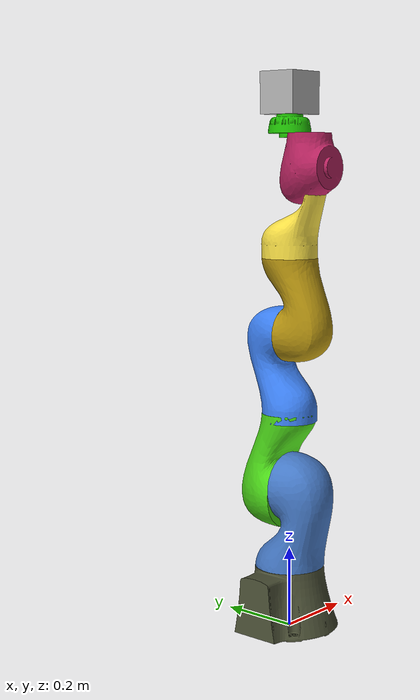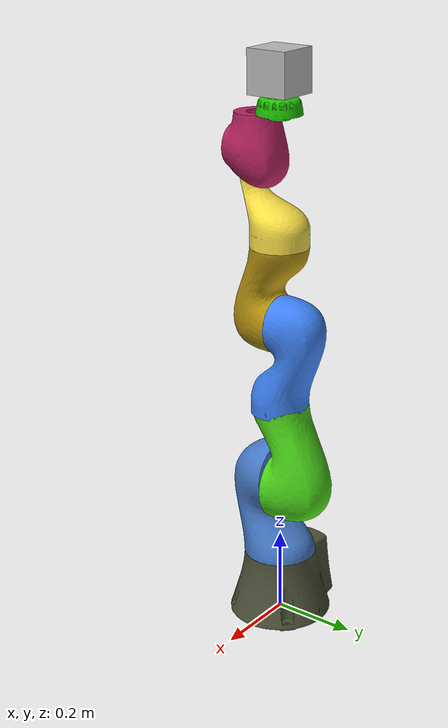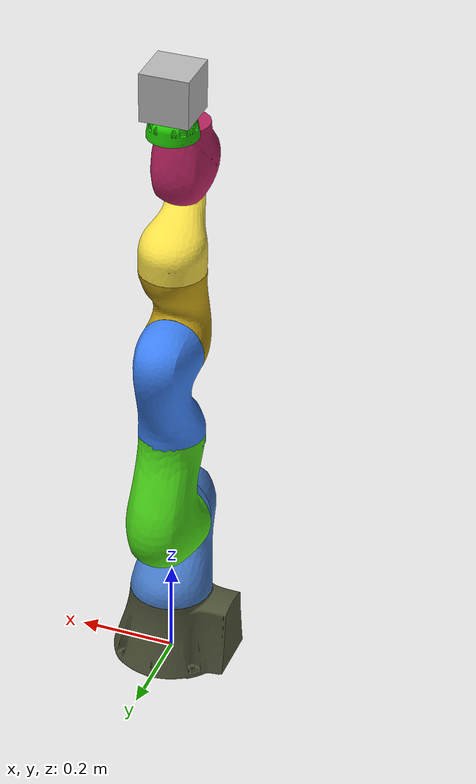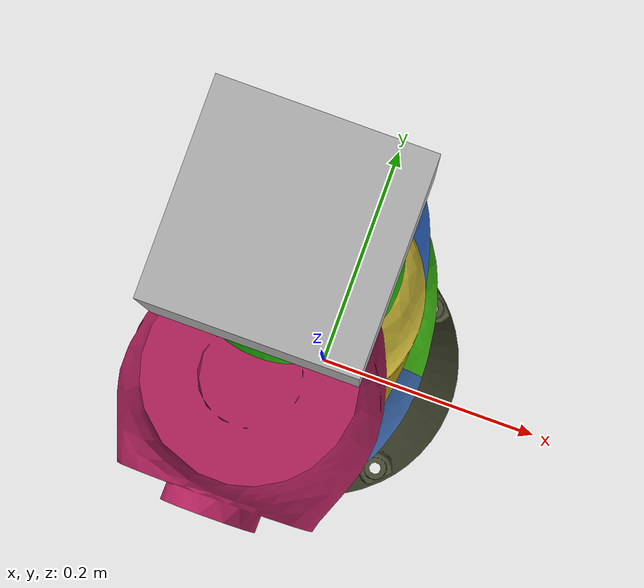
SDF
<?xml version="1.0" ?>

<sdf version='1.6'>
  <model name="kuka_handlit">
    <!--KUKA-->
    <link name = "world">
        <pose frame=''>0 0 0 0 0 0</pose>
        <inertial>
            <pose frame=''>0 0 0.0 0 0 0</pose>
            <mass>0.0</mass>
            <inertia>
                <ixx>0.</ixx>
                <ixy>0</ixy>
                <ixz>0</ixz>
                <iyy>0.</iyy>
                <iyz>0</iyz>
                <izz>0.</izz>
            </inertia>
        </inertial>
    </link>
    <joint name="world" type="fixed">
        <child>lbr_iiwa_link_0</child>
        <parent>world</parent>
    </joint>

      <link name="lbr_iiwa_link_0">
        <pose frame=''>0 0 0 0 0 0</pose>
        <inertial>
            <pose frame=''>-0.1 0 0.07 0 0 0</pose>
            <mass>5</mass>
            <inertia>
                <ixx>0.05</ixx>
                <ixy>0</ixy>
                <ixz>0</ixz>
                <iyy>0.06</iyy>
                <iyz>0</iyz>
                <izz>0.03</izz>
            </inertia>
        </inertial>
        <collision name='lbr_iiwa_link_0_collision'>
          <pose frame=''>0 0 0 0 -0 0</pose>
          <geometry>
            <mesh>

              <scale>1 1 1</scale>
              <uri>meshes/kuka/collision/link_0.stl</uri>

            </mesh>
          </geometry>
        </collision>
        <visual name='lbr_iiwa_link_0_visual'>
          <pose frame=''>0 0 0 0 -0 0</pose>
          <geometry>
            <mesh>
              <scale>1 1 1</scale>
              <uri>meshes/kuka/visual/link_0.stl</uri>
            </mesh>
          </geometry>
          <material>
            <ambient>0.6626473642580232 0.463205621894593 0.8091742934005001 1</ambient>
            <diffuse>0.2990716142906359 0.3174597696507889 0.21571927405496472 1</diffuse>
            <specular>0.23681618589321862 0.4798757058973526 0.28354666884481117 1</specular>
            <emissive>0 0 0 0</emissive>
          </material>
        </visual>
      </link>

      <link name="lbr_iiwa_link_1">
        <pose frame=''>0 0 0.1575 0 0 0</pose>
        <inertial>
            <pose frame=''>0 -0.03 0.12 0 0 0</pose>
            <mass>3.4525</mass>
            <inertia>
                <ixx>0.02183</ixx>
                <ixy>0</ixy>
                <ixz>0</ixz>
                <iyy>0.007703</iyy>
                <iyz>-0.003887</iyz>
                <izz>0.02083</izz>
            </inertia>
        </inertial>
        <collision name='lbr_iiwa_link_1_collision'>
          <pose frame=''>0 0 0 0 -0 0</pose>
          <geometry>
            <mesh>

              <scale>1 1 1</scale>
              <uri>meshes/kuka/collision/link_1.stl</uri>

            </mesh>
          </geometry>
        </collision>
        <visual name='lbr_iiwa_link_1_visual'>
          <pose frame=''>0 0 0 0 -0 0</pose>
          <geometry>
            <mesh>
              <scale>1 1 1</scale>
              <uri>meshes/kuka/visual/link_1.stl</uri>
            </mesh>
          </geometry>
          <material>
            <ambient>0.9690799330220133 0.7350027159733001 0.2221004227332647 1</ambient>
            <diffuse>0.27371495414553926 0.47816648048234855 0.7820587986090228 1</diffuse>
            <specular>0.8024281748729444 0.06701374752387246 0.8328792979218266 1</specular>
            <emissive>0 0 0 0</emissive>
          </material>
        </visual>
      </link>

      <link name="lbr_iiwa_link_2">
        <pose frame=''>0 0 0.34 1.5708 0 -3.14159</pose>
        <inertial>
            <pose frame=''>0.0003 0.059 0.042 0 0 0</pose>
            <mass>3.4821</mass>
            <inertia>
                <ixx>0.02076</ixx>
                <ixy>0</ixy>
                <ixz>0.003626</ixz>
                <iyy>0.02179</iyy>
                <iyz>0</iyz>
                <izz>0.00779</izz>
            </inertia>
        </inertial>
        <collision name='lbr_iiwa_link_2_collision'>
          <pose frame=''>0 0 0 0 -0 0</pose>
          <geometry>
            <mesh>

              <scale>1 1 1</scale>
              <uri>meshes/kuka/collision/link_2.stl</uri>

            </mesh>
          </geometry>
        </collision>
        <visual name='lbr_iiwa_link_2_visual'>
          <pose frame=''>0 0 0 0 -0 0</pose>
          <geometry>
            <mesh>
              <scale>1 1 1</scale>
              <uri>meshes/kuka/visual/link_2.stl</uri>
            </mesh>
          </geometry>
          <material>
            <ambient>0.973618594019027 0.34077911306115405 0.6516829061620156 1</ambient>
            <diffuse>0.30039478278405674 0.852002428268958 0.09732285136935304 1</diffuse>
            <specular>0.04238511654595578 0.7589089544941069 0.22723824485793953 1</specular>
            <emissive>0 0 0 0</emissive>
          </material>
        </visual>
      </link>

      <link name="lbr_iiwa_link_3">
        <pose frame=''>0 0 0.524 0 0 0</pose>
        <inertial>
            <pose frame=''>0 0.03 0.13 0 0 0</pose>
            <mass>4.05623</mass>
            <inertia>
                <ixx>0.03204</ixx>
                <ixy>0</ixy>
                <ixz>0</ixz>
                <iyy>0.00972</iyy>
                <iyz>0.006227</iyz>
                <izz>0.03042</izz>
            </inertia>
        </inertial>
        <collision name='lbr_iiwa_link_3_collision'>
          <pose frame=''>0 0 0 0 -0 0</pose>
          <geometry>
            <mesh>

              <scale>1 1 1</scale>
              <uri>meshes/kuka/collision/link_3.stl</uri>

            </mesh>
          </geometry>
        </collision>
        <visual name='lbr_iiwa_link_3_visual'>
          <pose frame=''>0 0 0 0 -0 0</pose>
          <geometry>
            <mesh>
              <scale>1 1 1</scale>
              <uri>meshes/kuka/visual/link_3.stl</uri>
            </mesh>
          </geometry>
          <material>
            <ambient>0.4193192611581361 0.19561278843133068 0.3974188823482756 1</ambient>
            <diffuse>0.24048568924914515 0.5093628442946905 0.9604854383307595 1</diffuse>
            <specular>0.5806958640576643 0.862205672174469 0.304324043208983 1</specular>
            <emissive>0 0 0 0</emissive>
          </material>
        </visual>
      </link>

      <link name="lbr_iiwa_link_4">
        <pose frame=''>0 0 0.74 1.5708 0 0</pose>
        <inertial>
            <pose frame=''>0 0.067 0.034 0 0 0</pose>
            <mass>3.4822</mass>
            <inertia>
                <ixx>0.02178</ixx>
                <ixy>0</ixy>
                <ixz>0</ixz>
                <iyy>0.02075</iyy>
                <iyz>-0.003625</iyz>
                <izz>0.007785</izz>
            </inertia>
        </inertial>
        <collision name='lbr_iiwa_link_4_collision'>
          <pose frame=''>0 0 0 0 -0 0</pose>
          <geometry>
            <mesh>

              <scale>1 1 1</scale>
              <uri>meshes/kuka/collision/link_4.stl</uri>

            </mesh>
          </geometry>
        </collision>
        <visual name='lbr_iiwa_link_4_visual'>
          <pose frame=''>0 0 0 0 -0 0</pose>
          <geometry>
            <mesh>
              <scale>1 1 1</scale>
              <uri>meshes/kuka/visual/link_4.stl</uri>
            </mesh>
          </geometry>
          <material>
            <ambient>0.09442163356641298 0.48468726549542296 0.8044312307226361 1</ambient>
            <diffuse>0.712816555473966 0.5772760136448782 0.06375702235871872 1</diffuse>
            <specular>0.30106419276675567 0.634122158784747 0.5866768720483909 1</specular>
            <emissive>0 0 0 0</emissive>
          </material>
        </visual>
      </link>

      <link name="lbr_iiwa_link_5">
        <pose frame=''>0 0 0.9239999999999999 0 0 -3.14159</pose>
        <inertial>
            <pose frame=''>0.0001 0.021 0.076 0 0 0</pose>
            <mass>2.1633</mass>
            <inertia>
                <ixx>0.01287</ixx>
                <ixy>0</ixy>
                <ixz>0</ixz>
                <iyy>0.005708</iyy>
                <iyz>-0.003946</iyz>
                <izz>0.01112</izz>
            </inertia>
        </inertial>
        <collision name='lbr_iiwa_link_5_collision'>
          <pose frame=''>0 0 0 0 -0 0</pose>
          <geometry>
            <mesh>

              <scale>1 1 1</scale>
              <uri>meshes/kuka/collision/link_5.stl</uri>

            </mesh>
          </geometry>
        </collision>
        <visual name='lbr_iiwa_link_5_visual'>
          <pose frame=''>0 0 0 0 -0 0</pose>
          <geometry>
            <mesh>
              <scale>1 1 1</scale>
              <uri>meshes/kuka/visual/link_5.stl</uri>
            </mesh>
          </geometry>
          <material>
            <ambient>0.14551339664922158 0.6003022882166348 0.7549340587086358 1</ambient>
            <diffuse>0.980365626085815 0.8828056812960496 0.2760028849612144 1</diffuse>
            <specular>0.421736869894788 0.14831568997809286 0.9934269832380175 1</specular>
            <emissive>0 0 0 0</emissive>
          </material>
        </visual>
      </link>

      <link name="lbr_iiwa_link_6">
        <pose frame=''>0 -0.0607 1.14 1.5708 0 -3.14159</pose>
        <inertial>
            <pose frame=''>0 0.0006 0.0004 0 0 0</pose>
            <mass>2.3466</mass>
            <inertia>
                <ixx>0.006509</ixx>
                <ixy>0</ixy>
                <ixz>0</ixz>
                <iyy>0.006259</iyy>
                <iyz>0.00031891</iyz>
                <izz>0.004527</izz>
            </inertia>
        </inertial>
        <collision name='lbr_iiwa_link_6_collision'>
          <pose frame=''>0 0 0 0 -0 0</pose>
          <geometry>
            <mesh>

              <scale>1 1 1</scale>
              <uri>meshes/kuka/collision/link_6.stl</uri>

            </mesh>
          </geometry>
        </collision>
        <visual name='lbr_iiwa_link_6_visual'>
          <pose frame=''>0 0 0 0 -0 0</pose>
          <geometry>
            <mesh>
              <scale>1 1 1</scale>
              <uri>meshes/kuka/visual/link_6.stl</uri>
            </mesh>
          </geometry>
          <material>
            <ambient>0.778234729407183 0.5981186666894198 0.9551448246017099 1</ambient>
            <diffuse>0.7242897339808376 0.13711582381131449 0.37898191687264215 1</diffuse>
            <specular>0.44236638054334865 0.6287248332771223 0.739169121694495 1</specular>
            <emissive>0 0 0 0</emissive>
          </material>
        </visual>
      </link>

      <link name="lbr_iiwa_link_7">
        <pose frame=''>0 0 1.2205000000000001 0 0 0</pose>
        <inertial>
            <pose frame=''>0 0.00043 0.071108 0 0 0</pose>
            <mass>3.129</mass>
            <inertia>
                <ixx>0.145258</ixx>
                <ixy>0.0005912</ixy>
                <ixz>0</ixz>
                <iyy>0.145283</iyy>
                <iyz>-0.000503009</iyz>
                <izz>0.0572184</izz>
            </inertia>
        </inertial>
        <collision name='lbr_iiwa_link_7_collision'>
          <pose frame=''>0 0 0 0 -0 0</pose>
          <geometry>
            <mesh>

              <scale>1 1 1</scale>
              <uri>meshes/kuka/collision/link_7.stl</uri>

            </mesh>
          </geometry>
        </collision>
        <visual name='lbr_iiwa_link_7_visual'>
          <pose frame=''>0 0 0 0 -0 0</pose>
          <geometry>
            <mesh>
              <scale>1 1 1</scale>
              <uri>meshes/kuka/visual/link_7.stl</uri>
            </mesh>
          </geometry>
          <material>
            <ambient>0.7359306666743102 0.6695034254289416 0.24480995334897315 1</ambient>
            <diffuse>0.13014889095532278 0.7677157931892422 0.019141738837031852 1</diffuse>
            <specular>0.3653469380633946 0.5294130216432804 0.3059599829879036 1</specular>
            <emissive>0 0 0 0</emissive>
          </material>
        </visual>
      </link>

      <joint name="J0" type="revolute">
        <child>lbr_iiwa_link_1</child>
        <parent>lbr_iiwa_link_0</parent>
        <axis>
          <xyz>0 0 1</xyz>
          <limit>
            <lower>-2.96706</lower>
            <upper>2.96706</upper>
            <effort>300</effort>
            <velocity>10</velocity>
          </limit>
          <dynamics>
            <damping>0.5</damping>
            <friction>0</friction>
            <spring_reference>0</spring_reference>
            <spring_stiffness>0</spring_stiffness>
          </dynamics>
        </axis>
      </joint>

      <joint name="J1" type="revolute">
        <child>lbr_iiwa_link_2</child>
        <parent>lbr_iiwa_link_1</parent>
        <axis>
          <xyz>0 0 1</xyz>
          <limit>
            <lower>-2.0944</lower>
            <upper>2.0944</upper>
            <effort>300</effort>
            <velocity>10</velocity>
          </limit>
          <dynamics>
            <damping>0.5</damping>
            <friction>0</friction>
            <spring_reference>0</spring_reference>
            <spring_stiffness>0</spring_stiffness>
          </dynamics>
        </axis>
      </joint>

      <joint name="J2" type="revolute">
        <child>lbr_iiwa_link_3</child>
        <parent>lbr_iiwa_link_2</parent>
        <axis>
          <xyz>0 0 1</xyz>
          <limit>
            <lower>-2.96706</lower>
            <upper>2.96706</upper>
            <effort>300</effort>
            <velocity>10</velocity>
          </limit>
          <dynamics>
            <damping>0.5</damping>
            <friction>0</friction>
            <spring_reference>0</spring_reference>
            <spring_stiffness>0</spring_stiffness>
          </dynamics>
        </axis>
      </joint>

      <joint name="J3" type="revolute">
        <child>lbr_iiwa_link_4</child>
        <parent>lbr_iiwa_link_3</parent>
        <axis>
          <xyz>0 0 1</xyz>
          <limit>
            <lower>-2.0944</lower>
            <upper>2.0944</upper>
            <effort>300</effort>
            <velocity>10</velocity>
          </limit>
          <dynamics>
            <damping>0.5</damping>
            <friction>0</friction>
            <spring_reference>0</spring_reference>
            <spring_stiffness>0</spring_stiffness>
          </dynamics>
        </axis>
      </joint>

      <joint name="J4" type="revolute">
        <child>lbr_iiwa_link_5</child>
        <parent>lbr_iiwa_link_4</parent>
        <axis>
          <xyz>0 0 1</xyz>
          <limit>
            <lower>-2.96706</lower>
            <upper>2.96706</upper>
            <effort>300</effort>
            <velocity>10</velocity>
          </limit>
          <dynamics>
            <damping>0.5</damping>
            <friction>0</friction>
            <spring_reference>0</spring_reference>
            <spring_stiffness>0</spring_stiffness>
          </dynamics>
        </axis>
      </joint>

      <joint name="J5" type="revolute">
        <child>lbr_iiwa_link_6</child>
        <parent>lbr_iiwa_link_5</parent>
        <axis>
          <xyz>0 0 1</xyz>
          <limit>
            <lower>-2.0944</lower>
            <upper>2.0944</upper>
            <effort>300</effort>
            <velocity>10</velocity>
          </limit>
          <dynamics>
            <damping>0.5</damping>
            <friction>0</friction>
            <spring_reference>0</spring_reference>
            <spring_stiffness>0</spring_stiffness>
          </dynamics>
        </axis>
      </joint>

      <joint name="J6" type="revolute">
        <child>lbr_iiwa_link_7</child>
        <parent>lbr_iiwa_link_6</parent>
        <axis>
          <xyz>0 0 1</xyz>
          <limit>
            <lower>-3.05433</lower>
            <upper>3.05433</upper>
            <effort>300</effort>
            <velocity>10</velocity>
          </limit>
          <dynamics>
            <damping>0.5</damping>
            <friction>0</friction>
            <spring_reference>0</spring_reference>
            <spring_stiffness>0</spring_stiffness>
          </dynamics>
        </axis>
      </joint>

    <!--extra link for kuka to match my setup for rviz -->

    <link name="lbr_iiwa_link_ee">
        <pose frame=''>0 0 1.2200000000000002 0 0 0</pose>
    </link>
    <joint name="J7" type="fixed">
        <child>lbr_iiwa_link_ee</child>
        <parent>lbr_iiwa_link_7</parent>
    </joint>

    <link name="Box_ee">
        <pose frame=''>0 0 1.3150000000000002 0 0 0</pose>
        <inertial>
            <pose frame=''>0 0 0.035 0 0 0</pose>
            <mass>0.2</mass>
            <inertia>
                <ixx>0.5</ixx>
                <ixy>0</ixy>
                <ixz>0</ixz>
                <iyy>0.5</iyy>
                <iyz>0</iyz>
                <izz>0.5</izz>
            </inertia>
        </inertial>

        <visual name="visual">
            <geometry>
                <box>
                    <size>0.1 0.1 0.1</size>
                </box>
            </geometry>
        </visual>
        <ghost name="ghost">
            <geometry>
                <box>
                    <size>0.1 0.1 0.1</size>
                </box>
            </geometry>
        </ghost>
    </link>

    <joint name="cube" type="fixed">
        <child>Box_ee</child>
        <parent>lbr_iiwa_link_ee</parent>
    </joint>

  </model>

</sdf>
